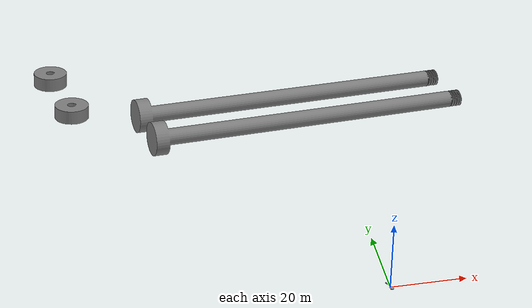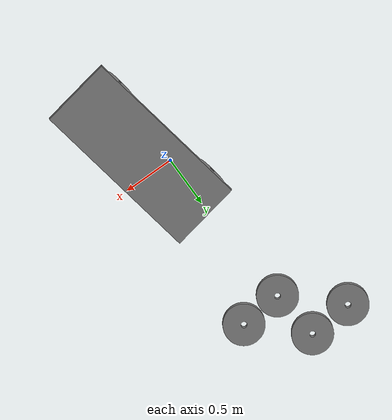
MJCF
<mujoco model="plank_car_assembly">
    <compiler angle="radian" meshdir="../../assets/plank_car"/>

    <asset>
        <mesh name="body_mesh" file="body.obj" scale="0.01 0.01 0.01"/>
        <mesh name="wheel1_mesh" file="wheel1.obj" scale="0.01 0.01 0.01"/>
        <mesh name="wheel2_mesh" file="wheel2.obj" scale="0.01 0.01 0.01"/>
        <mesh name="wheel3_mesh" file="wheel3.obj" scale="0.01 0.01 0.01"/>
        <mesh name="wheel4_mesh" file="wheel4.obj" scale="0.01 0.01 0.01"/>
        <mesh name="A1_mesh" file="A1.obj"/>
        <mesh name="A2_mesh" file="A2.obj"/>
        <mesh name="B1_mesh" file="B1.obj"/>
        <mesh name="B2_mesh" file="B2.obj"/>
    </asset>

    <worldbody>
        <!-- 根：整车 -->
        <body name="car" pos="0 0 0.05" euler="1.5708 0 0">
            <freejoint/>

            <geom type="mesh" mesh="body_mesh"/>

            <!-- 轮子 -->
            <body name="wheel1" pos="0.2 0.1 0">
                <geom type="mesh" mesh="wheel1_mesh"/>
            </body>
            <body name="wheel2" pos="0.2 -0.1 0">
                <geom type="mesh" mesh="wheel2_mesh"/>
            </body>
            <body name="wheel3" pos="-0.2 0.1 0">
                <geom type="mesh" mesh="wheel3_mesh"/>
            </body>
            <body name="wheel4" pos="-0.2 -0.1 0">
                <geom type="mesh" mesh="wheel4_mesh"/>
            </body>

            <!-- 结构件 -->
            <body name="A1" pos="0.3 0 0">
                <geom type="mesh" mesh="A1_mesh"/>
            </body>
            <body name="A2" pos="0.35 0 0">
                <geom type="mesh" mesh="A2_mesh"/>
            </body>
            <body name="B1" pos="-0.3 0 0">
                <geom type="mesh" mesh="B1_mesh"/>
            </body>
            <body name="B2" pos="-0.35 0 0">
                <geom type="mesh" mesh="B2_mesh"/>
            </body>
        </body>
    </worldbody>
</mujoco>
